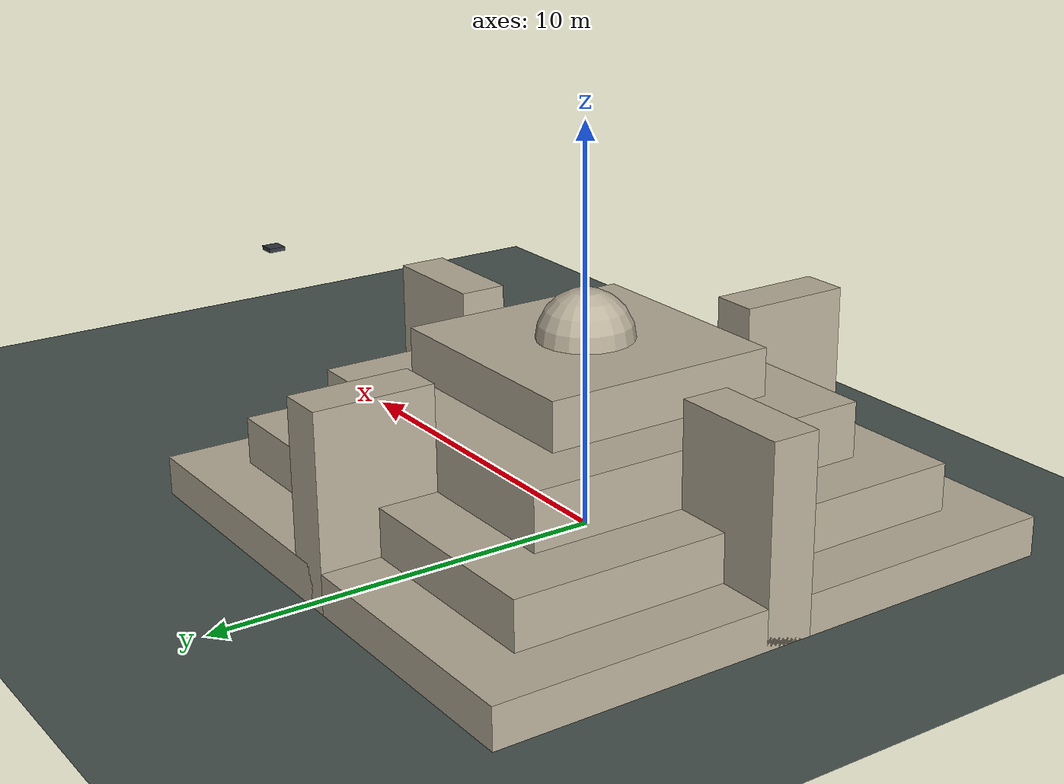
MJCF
<mujoco model="demo_scan">

  <compiler autolimits="true"/>

  <option timestep="0.01"/>

  <statistic center="0 0 3" extent="17"/>

  <visual>
    <global offwidth="640" offheight="480"/>
    <map znear="0.01" zfar="5"/>
    <quality shadowsize="2048"/>
    <!-- Cosmetic only — depth ignores shading. A straight-down sun would leave
         the vertical faces almost black in the RGB view. -->
    <headlight ambient="0.45 0.45 0.45" diffuse="0.5 0.5 0.5" specular="0.1 0.1 0.1"/>
  </visual>

  <asset>
    <texture name="skybox" type="skybox" builtin="gradient"
             rgb1="0.35 0.5 0.7" rgb2="0.9 0.9 0.95" width="512" height="512"/>
    <texture name="grid" type="2d" builtin="checker" rgb1="0.25 0.3 0.28"
             rgb2="0.3 0.35 0.33" width="512" height="512"/>
    <material name="grid" texture="grid" texrepeat="12 12" reflectance="0.05"/>
    <material name="stone" rgba="0.72 0.68 0.6 1" specular="0.1" shininess="0.1"/>
    <material name="drone_body" rgba="0.2 0.22 0.25 1"/>
  </asset>

  <worldbody>
    <light name="sun" directional="true" diffuse="0.8 0.8 0.8" specular="0.2 0.2 0.2"
           pos="20 -20 30" dir="-0.5 0.5 -0.7"/>
    <light name="fill" directional="true" pos="-20 20 25" dir="0.5 -0.5 -0.6"
           diffuse="0.35 0.35 0.35" specular="0 0 0"/>

    <geom name="floor" type="plane" size="60 60 0.1" material="grid"/>

    <!-- Static: no joint, and no collision, since the drone is kinematic and
         never touches anything. Sizes are half-extents, so tier 1 is
         15 x 15 x 1 m and sits with its base on z=0. -->
    <body name="candi" pos="0 0 0">
      <!-- Four square terraces, each set back from the one below. The setback
           is what makes the summit invisible from a low orbit ring, which is
           why the flight path climbs. -->
      <geom name="tier1" type="box" size="7.5 7.5 0.5" pos="0 0 0.5"
            material="stone" contype="0" conaffinity="0"/>
      <geom name="tier2" type="box" size="6.0 6.0 0.6" pos="0 0 1.6"
            material="stone" contype="0" conaffinity="0"/>
      <geom name="tier3" type="box" size="4.5 4.5 0.7" pos="0 0 2.9"
            material="stone" contype="0" conaffinity="0"/>
      <geom name="tier4" type="box" size="3.0 3.0 0.6" pos="0 0 4.2"
            material="stone" contype="0" conaffinity="0"/>

      <geom name="summit" type="sphere" size="1.2" pos="0 0 4.8"
            material="stone" contype="0" conaffinity="0"/>

      <geom name="stair_px" type="box" size="1.5 0.6 2.4" pos="6.0 0 2.4"
            material="stone" contype="0" conaffinity="0"/>
      <geom name="stair_nx" type="box" size="1.5 0.6 2.4" pos="-6.0 0 2.4"
            material="stone" contype="0" conaffinity="0"/>
      <geom name="stair_py" type="box" size="0.6 1.5 2.4" pos="0 6.0 2.4"
            material="stone" contype="0" conaffinity="0"/>
      <geom name="stair_ny" type="box" size="0.6 1.5 2.4" pos="0 -6.0 2.4"
            material="stone" contype="0" conaffinity="0"/>
    </body>

    <body name="drone" mocap="true" pos="16.479 0 3" quat="0 0 0 1">
      <!-- Group 2, so the depth camera can hide it. Without that the drone
           sees its own body a few centimetres away and injects a shell of
           occupied voxels that travels with it. -->
      <geom name="drone_visual" type="box" size="0.25 0.25 0.06"
            material="drone_body" group="2" contype="0" conaffinity="0" mass="0"/>

      <camera name="drone_cam" fovy="60" pos="0 0 0" xyaxes="0 -1 0  0 0 1"/>
    </body>
  </worldbody>
</mujoco>
